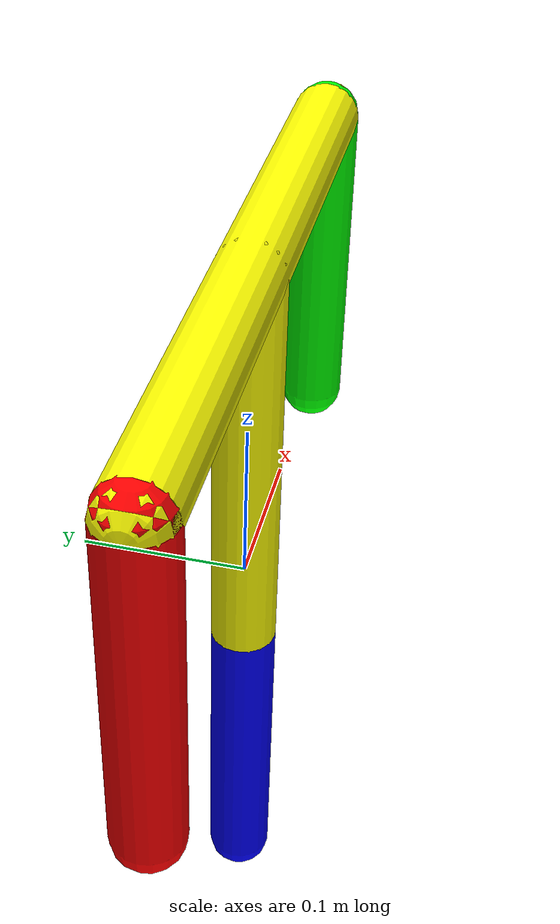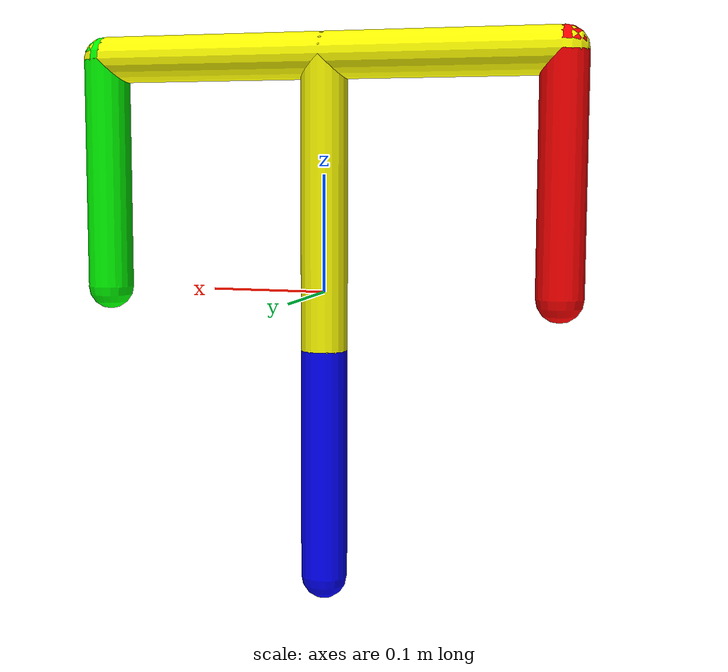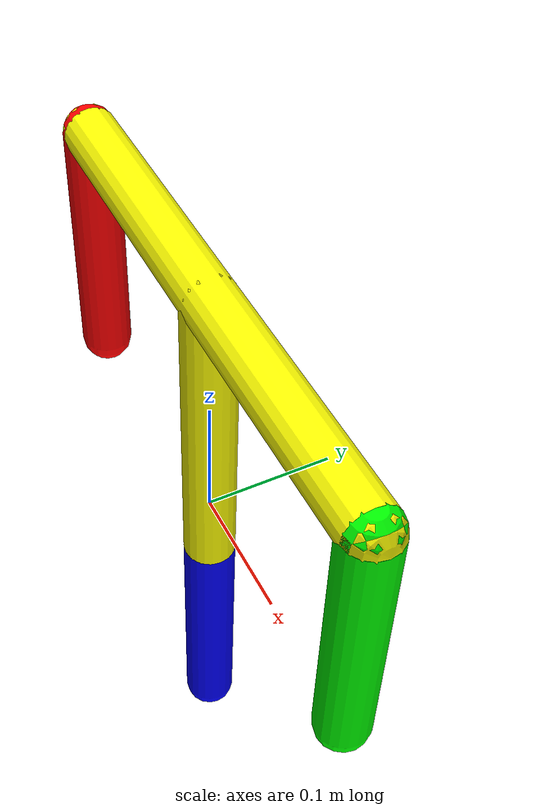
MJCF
<mujoco model="chaotic_pendulum">
    <option timestep=".001">
    <flag energy="enable" contact="disable"/>
    </option>

    <default>
        <joint type="hinge" axis="0 -1 0"/>
        <geom type="capsule" size=".02"/>
    </default>

    <worldbody>
        <light pos="0 -.4 .1"/>
        <camera name="fixed" pos="0 -1 0" xyaxes=" 1 0 0 0 0 1"/>
        <body name="0" pos="0 0 .2">
            <joint name="root"/>
            <geom fromto="-.2 0 0 .2 0 0" rgba="1 1 0 1"/>
            <geom fromto="0 0 0 0 0 -.25" rgba="1 1 0 1"/>
            <body name="1" pos="-.2 0 0">
                <joint/>
                <geom fromto="0 0 0 0 0 -.2" rgba="1 0 0 1"/>
            </body>
            <body name="2" pos=".2 0 0">
                <joint/>
                <geom fromto="0 0 0 0 0 -.2" rgba="0 1 0 1"/>
            </body>
            <body name="3" pos="0 0 -.25">
                <joint/>
                <geom fromto="0 0 0 0 0 -.2" rgba="0 0 1 1"/>
            </body>
        </body>
    </worldbody>

</mujoco>
